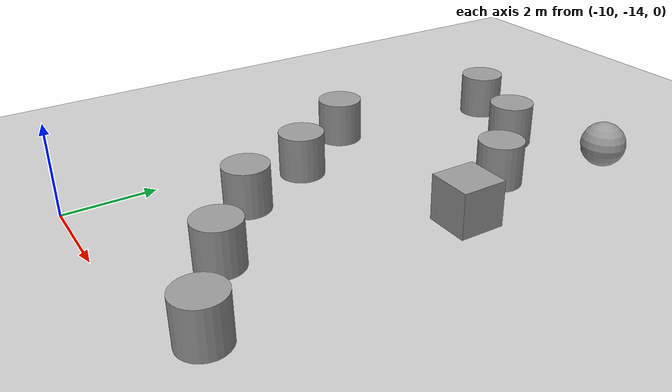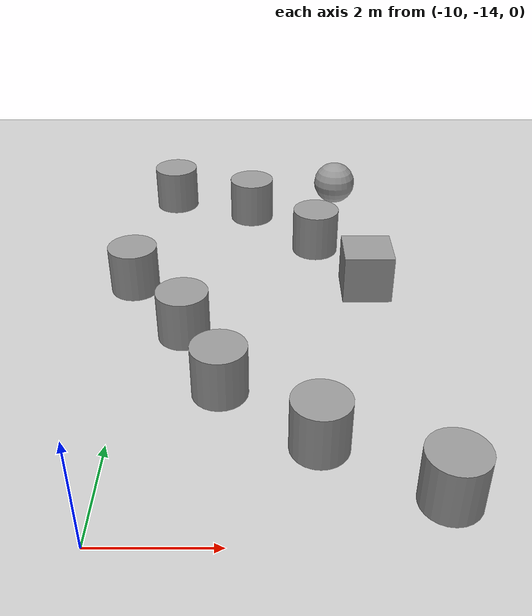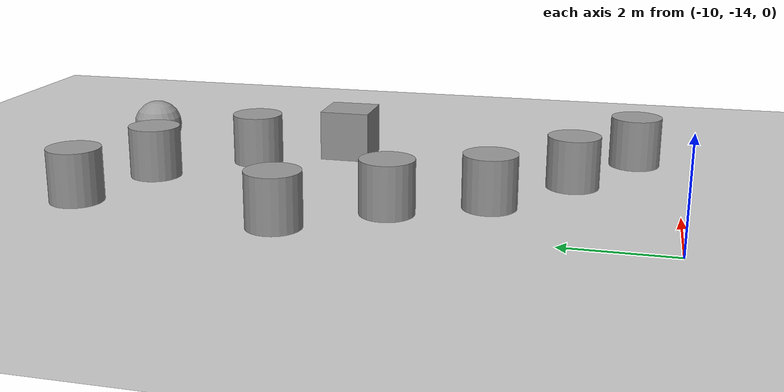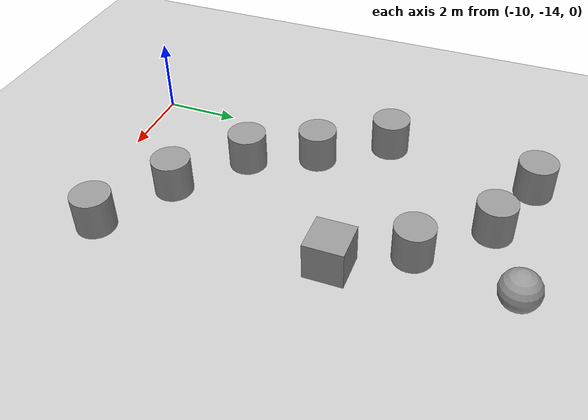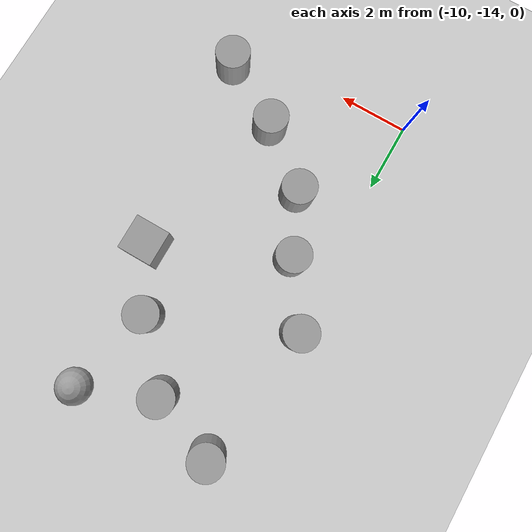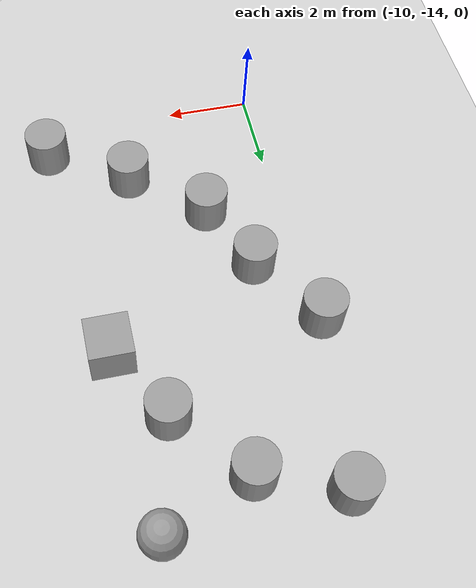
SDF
<sdf version="1.4">
 <world name="default">
  <light name="sun" type="directional">
   <pose>0 0 10 0 -0 0</pose>
   <diffuse>0.8 0.8 0.8 1</diffuse>
   <specular>0.2 0.2 0.2 1</specular>
   <attenuation>
    <range>1000</range>
    <constant>0.9</constant>
    <linear>0.01</linear>
    <quadratic>0.001</quadratic>
   </attenuation>
   <direction>-0.5 0.1 -0.9</direction>
  </light>
  <model name="ground_plane">
   <static>1</static>
   <link name="link">
    <collision name="collision">
     <geometry><plane><normal>0 0 1</normal><size>100 100</size></plane></geometry>
     <surface><friction><ode><mu>1</mu><mu2>1</mu2></ode></friction></surface>
    </collision>
    <visual name="visual">
     <cast_shadows>0</cast_shadows>
     <geometry><plane><normal>0 0 1</normal><size>100 100</size></plane></geometry>
     <material>
      <script><uri>file://media/materials/scripts/gazebo.material</uri><name>Gazebo/Grey</name></script>
     </material>
    </visual>
    <velocity_decay><linear>0</linear><angular>0</angular></velocity_decay>
   </link>
  </model>
  <physics type="ode">
   <max_step_size>0.001</max_step_size>
   <real_time_factor>1</real_time_factor>
   <real_time_update_rate>1000</real_time_update_rate>
   <gravity>0 0 -9.8</gravity>
  </physics>
  <scene><ambient>0.4 0.4 0.4 1</ambient><background>0.7 0.7 0.7 1</background><shadows>1</shadows></scene>
  <spherical_coordinates>
   <surface_model>EARTH_WGS84</surface_model>
   <latitude_deg>0</latitude_deg>
   <longitude_deg>0</longitude_deg>
   <elevation>0</elevation>
   <heading_deg>0</heading_deg>
  </spherical_coordinates>
  <model name="unit_box_1">
   <pose>-5.3633 -7.35003 0.5 0 -0 0</pose>
   <link name="link">
    <inertial>
     <mass>1</mass>
     <inertia><ixx>1</ixx><ixy>0</ixy><ixz>0</ixz><iyy>1</iyy><iyz>0</iyz><izz>1</izz></inertia>
    </inertial>
    <collision name="collision"><geometry><box><size>1 1 1</size></box></geometry></collision>
    <visual name="visual">
     <geometry><box><size>1 1 1</size></box></geometry>
     <material>
      <script><uri>file://media/materials/scripts/gazebo.material</uri><name>Gazebo/Grey</name></script>
     </material>
    </visual>
    <velocity_decay><linear>0</linear><angular>0</angular></velocity_decay>
   </link>
   <static>0</static>
  </model>
  <model name="unit_cylinder_1">
   <pose>-7.76504 -4.04112 0.5 0 -0 0</pose>
   <link name="link">
    <inertial>
     <mass>1</mass>
     <inertia><ixx>1</ixx><ixy>0</ixy><ixz>0</ixz><iyy>1</iyy><iyz>0</iyz><izz>1</izz></inertia>
    </inertial>
    <collision name="collision">
     <geometry><cylinder><radius>0.5</radius><length>1</length></cylinder></geometry>
    </collision>
    <visual name="visual">
     <geometry><cylinder><radius>0.5</radius><length>1</length></cylinder></geometry>
     <material>
      <script><uri>file://media/materials/scripts/gazebo.material</uri><name>Gazebo/Grey</name></script>
     </material>
    </visual>
    <velocity_decay><linear>0</linear><angular>0</angular></velocity_decay>
   </link>
   <static>0</static>
  </model>
  <model name="unit_sphere_3">
   <pose>-5.70571 -3.144 0.5 0 -0 0</pose>
   <link name="link">
    <inertial>
     <mass>1</mass>
     <inertia><ixx>1</ixx><ixy>0</ixy><ixz>0</ixz><iyy>1</iyy><iyz>0</iyz><izz>1</izz></inertia>
    </inertial>
    <collision name="collision"><geometry><sphere><radius>0.5</radius></sphere></geometry></collision>
    <visual name="visual">
     <geometry><sphere><radius>0.5</radius></sphere></geometry>
     <material>
      <script><uri>file://media/materials/scripts/gazebo.material</uri><name>Gazebo/Grey</name></script>
     </material>
    </visual>
    <velocity_decay><linear>0</linear><angular>0</angular></velocity_decay>
   </link>
   <static>0</static>
  </model>
  <model name="unit_cylinder_3">
   <pose>-8.23344 -10.6941 0.499995 1e-06 -1e-06 0</pose>
   <link name="link">
    <inertial>
     <mass>1</mass>
     <inertia><ixx>1</ixx><ixy>0</ixy><ixz>0</ixz><iyy>1</iyy><iyz>0</iyz><izz>1</izz></inertia>
    </inertial>
    <collision name="collision">
     <geometry><cylinder><radius>0.5</radius><length>1</length></cylinder></geometry>
    </collision>
    <visual name="visual">
     <geometry><cylinder><radius>0.5</radius><length>1</length></cylinder></geometry>
     <material>
      <script><uri>file://media/materials/scripts/gazebo.material</uri><name>Gazebo/Grey</name></script>
     </material>
    </visual>
    <velocity_decay><linear>0</linear><angular>0</angular></velocity_decay>
   </link>
   <static>0</static>
  </model>
  <model name="unit_cylinder_4">
   <pose>-6.5865 -12.0421 0.499995 0 -0 0</pose>
   <link name="link">
    <inertial>
     <mass>1</mass>
     <inertia><ixx>1</ixx><ixy>0</ixy><ixz>0</ixz><iyy>1</iyy><iyz>0</iyz><izz>1</izz></inertia>
    </inertial>
    <collision name="collision">
     <geometry><cylinder><radius>0.5</radius><length>1</length></cylinder></geometry>
    </collision>
    <visual name="visual">
     <geometry><cylinder><radius>0.5</radius><length>1</length></cylinder></geometry>
     <material>
      <script><uri>file://media/materials/scripts/gazebo.material</uri><name>Gazebo/Grey</name></script>
     </material>
    </visual>
    <velocity_decay><linear>0</linear><angular>0</angular></velocity_decay>
   </link>
   <static>0</static>
  </model>
  <model name="unit_cylinder_5">
   <pose>-9 -9 0.499998 1e-06 -0 0</pose>
   <link name="link">
    <inertial>
     <mass>1</mass>
     <inertia><ixx>1</ixx><ixy>0</ixy><ixz>0</ixz><iyy>1</iyy><iyz>0</iyz><izz>1</izz></inertia>
    </inertial>
    <collision name="collision">
     <geometry><cylinder><radius>0.5</radius><length>1</length></cylinder></geometry>
    </collision>
    <visual name="visual">
     <geometry><cylinder><radius>0.5</radius><length>1</length></cylinder></geometry>
     <material>
      <script><uri>file://media/materials/scripts/gazebo.material</uri><name>Gazebo/Grey</name></script>
     </material>
    </visual>
    <velocity_decay><linear>0</linear><angular>0</angular></velocity_decay>
   </link>
   <static>0</static>
  </model>
  <model name="unit_cylinder_6">
   <pose>-4.72802 -13.1537 0.499998 1e-06 -0 0</pose>
   <link name="link">
    <inertial>
     <mass>1</mass>
     <inertia><ixx>1</ixx><ixy>0</ixy><ixz>0</ixz><iyy>1</iyy><iyz>0</iyz><izz>1</izz></inertia>
    </inertial>
    <collision name="collision">
     <geometry><cylinder><radius>0.5</radius><length>1</length></cylinder></geometry>
    </collision>
    <visual name="visual">
     <geometry><cylinder><radius>0.5</radius><length>1</length></cylinder></geometry>
     <material>
      <script><uri>file://media/materials/scripts/gazebo.material</uri><name>Gazebo/Grey</name></script>
     </material>
    </visual>
    <velocity_decay><linear>0</linear><angular>0</angular></velocity_decay>
   </link>
   <static>0</static>
  </model>
  <model name="unit_cylinder_7">
   <pose>-6.31917 -5.65166 0.499995 0 -0 0</pose>
   <link name="link">
    <inertial>
     <mass>1</mass>
     <inertia><ixx>1</ixx><ixy>0</ixy><ixz>0</ixz><iyy>1</iyy><iyz>0</iyz><izz>1</izz></inertia>
    </inertial>
    <collision name="collision">
     <geometry><cylinder><radius>0.5</radius><length>1</length></cylinder></geometry>
    </collision>
    <visual name="visual">
     <geometry><cylinder><radius>0.5</radius><length>1</length></cylinder></geometry>
     <material>
      <script><uri>file://media/materials/scripts/gazebo.material</uri><name>Gazebo/Grey</name></script>
     </material>
    </visual>
    <velocity_decay><linear>0</linear><angular>0</angular></velocity_decay>
   </link>
   <static>0</static>
  </model>
  <model name="unit_cylinder_8">
   <pose>-9.63568 -3.34634 0.499992 -0 -0 -0</pose>
   <link name="link">
    <inertial>
     <mass>1</mass>
     <inertia><ixx>1</ixx><ixy>0</ixy><ixz>0</ixz><iyy>1</iyy><iyz>0</iyz><izz>1</izz></inertia>
    </inertial>
    <collision name="collision">
     <geometry><cylinder><radius>0.5</radius><length>1</length></cylinder></geometry>
    </collision>
    <visual name="visual">
     <geometry><cylinder><radius>0.5</radius><length>1</length></cylinder></geometry>
     <material>
      <script><uri>file://media/materials/scripts/gazebo.material</uri><name>Gazebo/Grey</name></script>
     </material>
    </visual>
    <velocity_decay><linear>0</linear><angular>0</angular></velocity_decay>
   </link>
   <static>0</static>
  </model>
  <model name="unit_cylinder_9">
   <pose>-10.158 -7.3096 0.499999 0 -0 0</pose>
   <link name="link">
    <inertial>
     <mass>1</mass>
     <inertia><ixx>1</ixx><ixy>0</ixy><ixz>0</ixz><iyy>1</iyy><iyz>0</iyz><izz>1</izz></inertia>
    </inertial>
    <collision name="collision">
     <geometry><cylinder><radius>0.5</radius><length>1</length></cylinder></geometry>
    </collision>
    <visual name="visual">
     <geometry><cylinder><radius>0.5</radius><length>1</length></cylinder></geometry>
     <material>
      <script><uri>file://media/materials/scripts/gazebo.material</uri><name>Gazebo/Grey</name></script>
     </material>
    </visual>
    <velocity_decay><linear>0</linear><angular>0</angular></velocity_decay>
   </link>
   <static>0</static>
  </model>
 </world>
</sdf>
